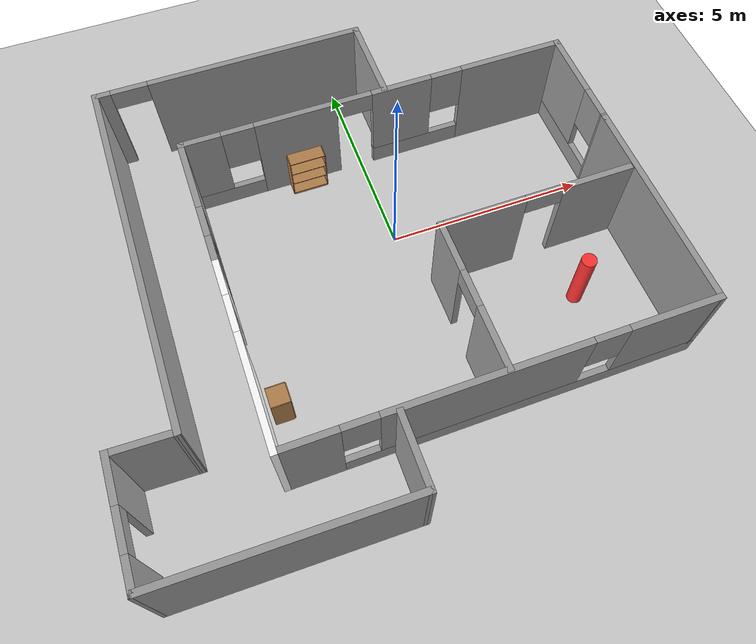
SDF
<sdf version="1.7">
 <world name="default">
  <plugin name="gazebo_ros_state" filename="libgazebo_ros_state.so">
   <ros><namespace>/gazebo</namespace></ros>
   <update_rate>20.0</update_rate>
  </plugin>
  <light name="sun" type="directional">
   <pose>0 0 10 0 -0 0</pose>
   <diffuse>0.8 0.8 0.8 1</diffuse>
   <specular>0.2 0.2 0.2 1</specular>
   <attenuation>
    <range>1000</range>
    <constant>0.9</constant>
    <linear>0.01</linear>
    <quadratic>0.001</quadratic>
   </attenuation>
   <direction>-0.5 0.1 -0.9</direction>
   <spot><inner_angle>0</inner_angle><outer_angle>0</outer_angle><falloff>0</falloff></spot>
  </light>
  <model name="ground_plane">
   <static>1</static>
   <link name="link">
    <collision name="collision">
     <geometry><plane><normal>0 0 1</normal><size>100 100</size></plane></geometry>
     <surface><friction><ode><mu>100</mu><mu2>50</mu2></ode></friction></surface>
    </collision>
    <visual name="visual">
     <cast_shadows>0</cast_shadows>
     <geometry><plane><normal>0 0 1</normal><size>100 100</size></plane></geometry>
     <material>
      <script><uri>file://media/materials/scripts/gazebo.material</uri><name>Gazebo/Grey</name></script>
     </material>
    </visual>
   </link>
  </model>
  <gravity>0 0 -9.8</gravity>
  <magnetic_field>6e-06 2.3e-05 -4.2e-05</magnetic_field>
  <atmosphere type="adiabatic"/>
  <physics type="ode">
   <max_step_size>0.001</max_step_size>
   <real_time_factor>1</real_time_factor>
   <real_time_update_rate>1000</real_time_update_rate>
  </physics>
  <scene><ambient>0.4 0.4 0.4 1</ambient><background>0.7 0.7 0.7 1</background><shadows>1</shadows></scene>
  <audio><device>default</device></audio>
  <spherical_coordinates>
   <surface_model>EARTH_WGS84</surface_model>
   <latitude_deg>0</latitude_deg>
   <longitude_deg>0</longitude_deg>
   <elevation>0</elevation>
   <heading_deg>0</heading_deg>
  </spherical_coordinates>
  <model name="Untitled">
   <pose>0.47 -1.23 0 0 -0 0</pose>
   <link name="Wall_0">
    <pose>-4.8 -1.675 0 0 -0 -1.5708</pose>
    <visual name="Wall_0_Visual_0">
     <pose>-1.80466 0 1.25 0 -0 0</pose>
     <geometry><box><size>0.890671 0.15 2.5</size></box></geometry>
     <material>
      <script><uri>file://media/materials/scripts/gazebo.material</uri><name>Gazebo/BrickWall</name></script>
      <ambient>1 1 1 1</ambient>
     </material>
     <meta><layer>0</layer></meta>
    </visual>
    <collision name="Wall_0_Collision_0">
     <geometry><box><size>0.890671 0.15 2.5</size></box></geometry>
     <pose>-1.80466 0 1.25 0 -0 0</pose>
    </collision>
    <visual name="Wall_0_Visual_1">
     <pose>0.895336 0 1.25 0 -0 0</pose>
     <geometry><box><size>2.70933 0.15 2.5</size></box></geometry>
     <material>
      <script><uri>file://media/materials/scripts/gazebo.material</uri><name>Gazebo/BrickWall</name></script>
      <ambient>1 1 1 1</ambient>
     </material>
     <meta><layer>0</layer></meta>
    </visual>
    <collision name="Wall_0_Collision_1">
     <geometry><box><size>2.70933 0.15 2.5</size></box></geometry>
     <pose>0.895336 0 1.25 0 -0 0</pose>
    </collision>
    <visual name="Wall_0_Visual_2">
     <pose>-0.909329 0 2.25 0 -0 0</pose>
     <geometry><box><size>0.9 0.15 0.5</size></box></geometry>
     <material>
      <script><uri>file://media/materials/scripts/gazebo.material</uri><name>Gazebo/BrickWall</name></script>
      <ambient>1 1 1 1</ambient>
     </material>
     <meta><layer>0</layer></meta>
    </visual>
    <collision name="Wall_0_Collision_2">
     <geometry><box><size>0.9 0.15 0.5</size></box></geometry>
     <pose>-0.909329 0 2.25 0 -0 0</pose>
    </collision>
   </link>
   <link name="Wall_1">
    <pose>-0 -3.85 0 0 -0 0</pose>
    <visual name="Wall_1_Visual_0">
     <pose>-4.18074 0 1.25 0 -0 0</pose>
     <geometry><box><size>1.38851 0.15 2.5</size></box></geometry>
     <material>
      <script><uri>file://media/materials/scripts/gazebo.material</uri><name>Gazebo/Grey</name></script>
      <ambient>1 1 1 1</ambient>
     </material>
     <meta><layer>0</layer></meta>
    </visual>
    <collision name="Wall_1_Collision_0">
     <geometry><box><size>1.38851 0.15 2.5</size></box></geometry>
     <pose>-4.18074 0 1.25 0 -0 0</pose>
    </collision>
    <visual name="Wall_1_Visual_1">
     <pose>0.694256 0 0.25 0 -0 0</pose>
     <geometry><box><size>8.36149 0.15 0.5</size></box></geometry>
     <material>
      <script><uri>file://media/materials/scripts/gazebo.material</uri><name>Gazebo/Grey</name></script>
      <ambient>1 1 1 1</ambient>
     </material>
     <meta><layer>0</layer></meta>
    </visual>
    <collision name="Wall_1_Collision_1">
     <geometry><box><size>8.36149 0.15 0.5</size></box></geometry>
     <pose>0.694256 0 0.25 0 -0 0</pose>
    </collision>
    <visual name="Wall_1_Visual_2">
     <pose>-0.394547 0 1.5 0 -0 0</pose>
     <geometry><box><size>4.58388 0.15 2</size></box></geometry>
     <material>
      <script><uri>file://media/materials/scripts/gazebo.material</uri><name>Gazebo/Grey</name></script>
      <ambient>1 1 1 1</ambient>
     </material>
     <meta><layer>0</layer></meta>
    </visual>
    <collision name="Wall_1_Collision_2">
     <geometry><box><size>4.58388 0.15 2</size></box></geometry>
     <pose>-0.394547 0 1.5 0 -0 0</pose>
    </collision>
    <visual name="Wall_1_Visual_3">
     <pose>3.7862 0 1.5 0 -0 0</pose>
     <geometry><box><size>2.17761 0.15 2</size></box></geometry>
     <material>
      <script><uri>file://media/materials/scripts/gazebo.material</uri><name>Gazebo/Grey</name></script>
      <ambient>1 1 1 1</ambient>
     </material>
     <meta><layer>0</layer></meta>
    </visual>
    <collision name="Wall_1_Collision_3">
     <geometry><box><size>2.17761 0.15 2</size></box></geometry>
     <pose>3.7862 0 1.5 0 -0 0</pose>
    </collision>
    <visual name="Wall_1_Visual_4">
     <pose>-3.08649 0 1.9 0 -0 0</pose>
     <geometry><box><size>0.8 0.15 1.2</size></box></geometry>
     <material>
      <script><uri>file://media/materials/scripts/gazebo.material</uri><name>Gazebo/Grey</name></script>
      <ambient>1 1 1 1</ambient>
     </material>
     <meta><layer>0</layer></meta>
    </visual>
    <collision name="Wall_1_Collision_4">
     <geometry><box><size>0.8 0.15 1.2</size></box></geometry>
     <pose>-3.08649 0 1.9 0 -0 0</pose>
    </collision>
    <visual name="Wall_1_Visual_5">
     <pose>2.29739 0 1.9 0 -0 0</pose>
     <geometry><box><size>0.8 0.15 1.2</size></box></geometry>
     <material>
      <script><uri>file://media/materials/scripts/gazebo.material</uri><name>Gazebo/Grey</name></script>
      <ambient>1 1 1 1</ambient>
     </material>
     <meta><layer>0</layer></meta>
    </visual>
    <collision name="Wall_1_Collision_5">
     <geometry><box><size>0.8 0.15 1.2</size></box></geometry>
     <pose>2.29739 0 1.9 0 -0 0</pose>
    </collision>
   </link>
   <link name="Wall_2">
    <collision name="Wall_2_Collision">
     <geometry><box><size>5.25 0.15 2.5</size></box></geometry>
     <pose>0 0 1.25 0 -0 0</pose>
    </collision>
    <visual name="Wall_2_Visual">
     <pose>0 0 1.25 0 -0 0</pose>
     <geometry><box><size>5.25 0.15 2.5</size></box></geometry>
     <material>
      <script><uri>file://media/materials/scripts/gazebo.material</uri><name>Gazebo/Grey</name></script>
      <ambient>1 1 1 1</ambient>
     </material>
     <meta><layer>0</layer></meta>
    </visual>
    <pose>4.8 -1.3 0 0 -0 1.5708</pose>
   </link>
   <link name="Wall_3">
    <pose>4.8 2.55 0 0 -0 1.5708</pose>
    <visual name="Wall_3_Visual_0">
     <pose>-1.27584 0 1.25 0 -0 0</pose>
     <geometry><box><size>0.198318 0.15 2.5</size></box></geometry>
     <material>
      <script><uri>file://media/materials/scripts/gazebo.material</uri><name>Gazebo/Grey</name></script>
      <ambient>1 1 1 1</ambient>
     </material>
     <meta><layer>0</layer></meta>
    </visual>
    <collision name="Wall_3_Collision_0">
     <geometry><box><size>0.198318 0.15 2.5</size></box></geometry>
     <pose>-1.27584 0 1.25 0 -0 0</pose>
    </collision>
    <visual name="Wall_3_Visual_1">
     <pose>0.099159 0 0.25 0 -0 0</pose>
     <geometry><box><size>2.55168 0.15 0.5</size></box></geometry>
     <material>
      <script><uri>file://media/materials/scripts/gazebo.material</uri><name>Gazebo/Grey</name></script>
      <ambient>1 1 1 1</ambient>
     </material>
     <meta><layer>0</layer></meta>
    </visual>
    <collision name="Wall_3_Collision_1">
     <geometry><box><size>2.55168 0.15 0.5</size></box></geometry>
     <pose>0.099159 0 0.25 0 -0 0</pose>
    </collision>
    <visual name="Wall_3_Visual_2">
     <pose>0.499159 0 1.5 0 -0 0</pose>
     <geometry><box><size>1.75168 0.15 2</size></box></geometry>
     <material>
      <script><uri>file://media/materials/scripts/gazebo.material</uri><name>Gazebo/Grey</name></script>
      <ambient>1 1 1 1</ambient>
     </material>
     <meta><layer>0</layer></meta>
    </visual>
    <collision name="Wall_3_Collision_2">
     <geometry><box><size>1.75168 0.15 2</size></box></geometry>
     <pose>0.499159 0 1.5 0 -0 0</pose>
    </collision>
    <visual name="Wall_3_Visual_3">
     <pose>-0.776682 0 1.9 0 -0 0</pose>
     <geometry><box><size>0.8 0.15 1.2</size></box></geometry>
     <material>
      <script><uri>file://media/materials/scripts/gazebo.material</uri><name>Gazebo/Grey</name></script>
      <ambient>1 1 1 1</ambient>
     </material>
     <meta><layer>0</layer></meta>
    </visual>
    <collision name="Wall_3_Collision_3">
     <geometry><box><size>0.8 0.15 1.2</size></box></geometry>
     <pose>-0.776682 0 1.9 0 -0 0</pose>
    </collision>
   </link>
   <link name="Wall_4">
    <pose>-0 3.85 0 0 -0 3.14159</pose>
    <visual name="Wall_4_Visual_0">
     <pose>-3.54148 0 1.25 0 -0 0</pose>
     <geometry><box><size>2.66705 0.15 2.5</size></box></geometry>
     <material>
      <script><uri>file://media/materials/scripts/gazebo.material</uri><name>Gazebo/Grey</name></script>
      <ambient>1 1 1 1</ambient>
     </material>
     <meta><layer>0</layer></meta>
    </visual>
    <collision name="Wall_4_Collision_0">
     <geometry><box><size>2.66705 0.15 2.5</size></box></geometry>
     <pose>-3.54148 0 1.25 0 -0 0</pose>
    </collision>
    <visual name="Wall_4_Visual_1">
     <pose>2.03972 0 1.25 0 -0 0</pose>
     <geometry><box><size>2.02327 0.15 2.5</size></box></geometry>
     <material>
      <script><uri>file://media/materials/scripts/gazebo.material</uri><name>Gazebo/Grey</name></script>
      <ambient>1 1 1 1</ambient>
     </material>
     <meta><layer>0</layer></meta>
    </visual>
    <collision name="Wall_4_Collision_1">
     <geometry><box><size>2.02327 0.15 2.5</size></box></geometry>
     <pose>2.03972 0 1.25 0 -0 0</pose>
    </collision>
    <visual name="Wall_4_Visual_2">
     <pose>-1.03993 0 0.25 0 -0 0</pose>
     <geometry><box><size>2.33604 0.15 0.5</size></box></geometry>
     <material>
      <script><uri>file://media/materials/scripts/gazebo.material</uri><name>Gazebo/Grey</name></script>
      <ambient>1 1 1 1</ambient>
     </material>
     <meta><layer>0</layer></meta>
    </visual>
    <collision name="Wall_4_Collision_2">
     <geometry><box><size>2.33604 0.15 0.5</size></box></geometry>
     <pose>-1.03993 0 0.25 0 -0 0</pose>
    </collision>
    <visual name="Wall_4_Visual_3">
     <pose>3.96318 0 0.25 0 -0 0</pose>
     <geometry><box><size>1.82364 0.15 0.5</size></box></geometry>
     <material>
      <script><uri>file://media/materials/scripts/gazebo.material</uri><name>Gazebo/Grey</name></script>
      <ambient>1 1 1 1</ambient>
     </material>
     <meta><layer>0</layer></meta>
    </visual>
    <collision name="Wall_4_Collision_3">
     <geometry><box><size>1.82364 0.15 0.5</size></box></geometry>
     <pose>3.96318 0 0.25 0 -0 0</pose>
    </collision>
    <visual name="Wall_4_Visual_4">
     <pose>-0.63993 0 1.5 0 -0 0</pose>
     <geometry><box><size>1.53604 0.15 2</size></box></geometry>
     <material>
      <script><uri>file://media/materials/scripts/gazebo.material</uri><name>Gazebo/Grey</name></script>
      <ambient>1 1 1 1</ambient>
     </material>
     <meta><layer>0</layer></meta>
    </visual>
    <collision name="Wall_4_Collision_4">
     <geometry><box><size>1.53604 0.15 2</size></box></geometry>
     <pose>-0.63993 0 1.5 0 -0 0</pose>
    </collision>
    <visual name="Wall_4_Visual_5">
     <pose>-0.63993 0 1.5 0 -0 0</pose>
     <geometry><box><size>1.53604 0.15 2</size></box></geometry>
     <material>
      <script><uri>file://media/materials/scripts/gazebo.material</uri><name>Gazebo/Grey</name></script>
      <ambient>1 1 1 1</ambient>
     </material>
     <meta><layer>0</layer></meta>
    </visual>
    <collision name="Wall_4_Collision_5">
     <geometry><box><size>1.53604 0.15 2</size></box></geometry>
     <pose>-0.63993 0 1.5 0 -0 0</pose>
    </collision>
    <visual name="Wall_4_Visual_6">
     <pose>4.36318 0 1.5 0 -0 0</pose>
     <geometry><box><size>1.02364 0.15 2</size></box></geometry>
     <material>
      <script><uri>file://media/materials/scripts/gazebo.material</uri><name>Gazebo/Grey</name></script>
      <ambient>1 1 1 1</ambient>
     </material>
     <meta><layer>0</layer></meta>
    </visual>
    <collision name="Wall_4_Collision_6">
     <geometry><box><size>1.02364 0.15 2</size></box></geometry>
     <pose>4.36318 0 1.5 0 -0 0</pose>
    </collision>
    <visual name="Wall_4_Visual_7">
     <pose>-1.80795 0 1.9 0 -0 0</pose>
     <geometry><box><size>0.8 0.15 1.2</size></box></geometry>
     <material>
      <script><uri>file://media/materials/scripts/gazebo.material</uri><name>Gazebo/Grey</name></script>
      <ambient>1 1 1 1</ambient>
     </material>
     <meta><layer>0</layer></meta>
    </visual>
    <collision name="Wall_4_Collision_7">
     <geometry><box><size>0.8 0.15 1.2</size></box></geometry>
     <pose>-1.80795 0 1.9 0 -0 0</pose>
    </collision>
    <visual name="Wall_4_Visual_8">
     <pose>3.45136 0 1.9 0 -0 0</pose>
     <geometry><box><size>0.8 0.15 1.2</size></box></geometry>
     <material>
      <script><uri>file://media/materials/scripts/gazebo.material</uri><name>Gazebo/Grey</name></script>
      <ambient>1 1 1 1</ambient>
     </material>
     <meta><layer>0</layer></meta>
    </visual>
    <collision name="Wall_4_Collision_8">
     <geometry><box><size>0.8 0.15 1.2</size></box></geometry>
     <pose>3.45136 0 1.9 0 -0 0</pose>
    </collision>
    <visual name="Wall_4_Visual_9">
     <pose>0.578089 0 2.25 0 -0 0</pose>
     <geometry><box><size>0.9 0.15 0.5</size></box></geometry>
     <material>
      <script><uri>file://media/materials/scripts/gazebo.material</uri><name>Gazebo/Grey</name></script>
      <ambient>1 1 1 1</ambient>
     </material>
     <meta><layer>0</layer></meta>
    </visual>
    <collision name="Wall_4_Collision_9">
     <geometry><box><size>0.9 0.15 0.5</size></box></geometry>
     <pose>0.578089 0 2.25 0 -0 0</pose>
    </collision>
    <visual name="Wall_4_Visual_10">
     <pose>0.578089 0 2.25 0 -0 0</pose>
     <geometry><box><size>0.9 0.15 0.5</size></box></geometry>
     <material>
      <script><uri>file://media/materials/scripts/gazebo.material</uri><name>Gazebo/Grey</name></script>
      <ambient>1 1 1 1</ambient>
     </material>
     <meta><layer>0</layer></meta>
    </visual>
    <collision name="Wall_4_Collision_10">
     <geometry><box><size>0.9 0.15 0.5</size></box></geometry>
     <pose>0.578089 0 2.25 0 -0 0</pose>
    </collision>
   </link>
   <link name="Wall_5">
    <pose>-4.8 2.175 0 0 -0 -1.5708</pose>
    <visual name="Wall_5_Visual_0">
     <pose>-0.797683 0 1.25 0 -0 0</pose>
     <geometry><box><size>1.90463 0.15 2.5</size></box></geometry>
     <material>
      <script><uri>file://media/materials/scripts/gazebo.material</uri><name>Gazebo/Grey</name></script>
      <ambient>1 1 1 1</ambient>
     </material>
     <meta><layer>0</layer></meta>
    </visual>
    <collision name="Wall_5_Collision_0">
     <geometry><box><size>1.90463 0.15 2.5</size></box></geometry>
     <pose>-0.797683 0 1.25 0 -0 0</pose>
    </collision>
    <visual name="Wall_5_Visual_1">
     <pose>0.952317 0 0.25 0 -0 0</pose>
     <geometry><box><size>1.59537 0.15 0.5</size></box></geometry>
     <material>
      <script><uri>file://media/materials/scripts/gazebo.material</uri><name>Gazebo/Grey</name></script>
      <ambient>1 1 1 1</ambient>
     </material>
     <meta><layer>0</layer></meta>
    </visual>
    <collision name="Wall_5_Collision_1">
     <geometry><box><size>1.59537 0.15 0.5</size></box></geometry>
     <pose>0.952317 0 0.25 0 -0 0</pose>
    </collision>
    <visual name="Wall_5_Visual_2">
     <pose>1.35232 0 1.5 0 -0 0</pose>
     <geometry><box><size>0.795367 0.15 2</size></box></geometry>
     <material>
      <script><uri>file://media/materials/scripts/gazebo.material</uri><name>Gazebo/Grey</name></script>
      <ambient>1 1 1 1</ambient>
     </material>
     <meta><layer>0</layer></meta>
    </visual>
    <collision name="Wall_5_Collision_2">
     <geometry><box><size>0.795367 0.15 2</size></box></geometry>
     <pose>1.35232 0 1.5 0 -0 0</pose>
    </collision>
    <visual name="Wall_5_Visual_3">
     <pose>0.554633 0 1.9 0 -0 0</pose>
     <geometry><box><size>0.8 0.15 1.2</size></box></geometry>
     <material>
      <script><uri>file://media/materials/scripts/gazebo.material</uri><name>Gazebo/Grey</name></script>
      <ambient>1 1 1 1</ambient>
     </material>
     <meta><layer>0</layer></meta>
    </visual>
    <collision name="Wall_5_Collision_3">
     <geometry><box><size>0.8 0.15 1.2</size></box></geometry>
     <pose>0.554633 0 1.9 0 -0 0</pose>
    </collision>
   </link>
   <link name="Wall_7">
    <pose>0.033716 -2.02469 0 0 -0 1.5708</pose>
    <visual name="Wall_7_Visual_0">
     <pose>-1.09891 0 1.25 0 -0 0</pose>
     <geometry><box><size>1.55218 0.15 2.5</size></box></geometry>
     <material>
      <script><uri>file://media/materials/scripts/gazebo.material</uri><name>Gazebo/Grey</name></script>
      <ambient>1 1 1 1</ambient>
     </material>
     <meta><layer>0</layer></meta>
    </visual>
    <collision name="Wall_7_Collision_0">
     <geometry><box><size>1.55218 0.15 2.5</size></box></geometry>
     <pose>-1.09891 0 1.25 0 -0 0</pose>
    </collision>
    <visual name="Wall_7_Visual_1">
     <pose>1.22609 0 1.25 0 -0 0</pose>
     <geometry><box><size>1.29782 0.15 2.5</size></box></geometry>
     <material>
      <script><uri>file://media/materials/scripts/gazebo.material</uri><name>Gazebo/Grey</name></script>
      <ambient>1 1 1 1</ambient>
     </material>
     <meta><layer>0</layer></meta>
    </visual>
    <collision name="Wall_7_Collision_1">
     <geometry><box><size>1.29782 0.15 2.5</size></box></geometry>
     <pose>1.22609 0 1.25 0 -0 0</pose>
    </collision>
    <visual name="Wall_7_Visual_2">
     <pose>0.127184 0 2.25 0 -0 0</pose>
     <geometry><box><size>0.9 0.15 0.5</size></box></geometry>
     <material>
      <script><uri>file://media/materials/scripts/gazebo.material</uri><name>Gazebo/Grey</name></script>
      <ambient>1 1 1 1</ambient>
     </material>
     <meta><layer>0</layer></meta>
    </visual>
    <collision name="Wall_7_Collision_2">
     <geometry><box><size>0.9 0.15 0.5</size></box></geometry>
     <pose>0.127184 0 2.25 0 -0 0</pose>
    </collision>
   </link>
   <link name="Wall_8">
    <pose>2.33372 -0.224694 0 0 -0 0</pose>
    <visual name="Wall_8_Visual_0">
     <pose>-1.3236 0 1.25 0 -0 0</pose>
     <geometry><box><size>2.10281 0.15 2.5</size></box></geometry>
     <material>
      <script><uri>file://media/materials/scripts/gazebo.material</uri><name>Gazebo/Grey</name></script>
      <ambient>1 1 1 1</ambient>
     </material>
     <meta><layer>0</layer></meta>
    </visual>
    <collision name="Wall_8_Collision_0">
     <geometry><box><size>2.10281 0.15 2.5</size></box></geometry>
     <pose>-1.3236 0 1.25 0 -0 0</pose>
    </collision>
    <visual name="Wall_8_Visual_1">
     <pose>1.5014 0 1.25 0 -0 0</pose>
     <geometry><box><size>1.74719 0.15 2.5</size></box></geometry>
     <material>
      <script><uri>file://media/materials/scripts/gazebo.material</uri><name>Gazebo/Grey</name></script>
      <ambient>1 1 1 1</ambient>
     </material>
     <meta><layer>0</layer></meta>
    </visual>
    <collision name="Wall_8_Collision_1">
     <geometry><box><size>1.74719 0.15 2.5</size></box></geometry>
     <pose>1.5014 0 1.25 0 -0 0</pose>
    </collision>
    <visual name="Wall_8_Visual_2">
     <pose>0.177809 0 2.25 0 -0 0</pose>
     <geometry><box><size>0.9 0.15 0.5</size></box></geometry>
     <material>
      <script><uri>file://media/materials/scripts/gazebo.material</uri><name>Gazebo/Grey</name></script>
      <ambient>1 1 1 1</ambient>
     </material>
     <meta><layer>0</layer></meta>
    </visual>
    <collision name="Wall_8_Collision_2">
     <geometry><box><size>0.9 0.15 0.5</size></box></geometry>
     <pose>0.177809 0 2.25 0 -0 0</pose>
    </collision>
   </link>
   <static>1</static>
  </model>
  <model name="bookshelf">
   <static>1</static>
   <link name="link">
    <inertial><mass>1</mass></inertial>
    <collision name="back">
     <pose>0 0.005 0.6 0 -0 0</pose>
     <geometry><box><size>0.9 0.01 1.2</size></box></geometry>
    </collision>
    <visual name="visual1">
     <pose>0 0.005 0.6 0 -0 0</pose>
     <geometry><box><size>0.9 0.01 1.2</size></box></geometry>
     <material>
      <script><uri>file://media/materials/scripts/gazebo.material</uri><name>Gazebo/Wood</name></script>
     </material>
    </visual>
    <collision name="left_side">
     <pose>0.45 -0.195 0.6 0 -0 0</pose>
     <geometry><box><size>0.02 0.4 1.2</size></box></geometry>
    </collision>
    <visual name="visual2">
     <pose>0.45 -0.195 0.6 0 -0 0</pose>
     <geometry><box><size>0.02 0.4 1.2</size></box></geometry>
     <material>
      <script><uri>file://media/materials/scripts/gazebo.material</uri><name>Gazebo/Wood</name></script>
     </material>
    </visual>
    <collision name="right_side">
     <pose>-0.45 -0.195 0.6 0 -0 0</pose>
     <geometry><box><size>0.02 0.4 1.2</size></box></geometry>
    </collision>
    <visual name="visual3">
     <pose>-0.45 -0.195 0.6 0 -0 0</pose>
     <geometry><box><size>0.02 0.4 1.2</size></box></geometry>
     <material>
      <script><uri>file://media/materials/scripts/gazebo.material</uri><name>Gazebo/Wood</name></script>
     </material>
    </visual>
    <collision name="bottom">
     <pose>0 -0.195 0.03 0 -0 0</pose>
     <geometry><box><size>0.88 0.4 0.06</size></box></geometry>
    </collision>
    <visual name="visual4">
     <pose>0 -0.195 0.03 0 -0 0</pose>
     <geometry><box><size>0.88 0.4 0.06</size></box></geometry>
     <material>
      <script><uri>file://media/materials/scripts/gazebo.material</uri><name>Gazebo/Wood</name></script>
     </material>
    </visual>
    <collision name="top">
     <pose>0 -0.195 1.19 0 -0 0</pose>
     <geometry><box><size>0.88 0.4 0.02</size></box></geometry>
    </collision>
    <visual name="visual5">
     <pose>0 -0.195 1.19 0 -0 0</pose>
     <geometry><box><size>0.88 0.4 0.02</size></box></geometry>
     <material>
      <script><uri>file://media/materials/scripts/gazebo.material</uri><name>Gazebo/Wood</name></script>
     </material>
    </visual>
    <collision name="low_shelf">
     <pose>0 -0.195 0.43 0 -0 0</pose>
     <geometry><box><size>0.88 0.4 0.02</size></box></geometry>
    </collision>
    <visual name="visual6">
     <pose>0 -0.195 0.43 0 -0 0</pose>
     <geometry><box><size>0.88 0.4 0.02</size></box></geometry>
     <material>
      <script><uri>file://media/materials/scripts/gazebo.material</uri><name>Gazebo/Wood</name></script>
     </material>
    </visual>
    <collision name="high_shelf">
     <pose>0 -0.195 0.8 0 -0 0</pose>
     <geometry><box><size>0.88 0.4 0.02</size></box></geometry>
    </collision>
    <visual name="visual7">
     <pose>0 -0.195 0.8 0 -0 0</pose>
     <geometry><box><size>0.88 0.4 0.02</size></box></geometry>
     <material>
      <script><uri>file://media/materials/scripts/gazebo.material</uri><name>Gazebo/Wood</name></script>
     </material>
    </visual>
   </link>
   <pose>-1.49781 2.59869 0 0 -0 0</pose>
  </model>
  <model name="cabinet">
   <static>1</static>
   <link name="cabinet_bottom_plate">
    <inertial>
     <pose>0 0 -1 0 -0 0</pose>
     <inertia><ixx>2.05</ixx><ixy>0</ixy><ixz>0</ixz><iyy>2.05</iyy><iyz>0</iyz><izz>2.05</izz></inertia>
     <mass>25</mass>
    </inertial>
    <collision name="cabinet_bottom_plate_geom">
     <pose>0 0 0.01 0 -0 0</pose>
     <geometry><box><size>0.45 0.45 0.02</size></box></geometry>
    </collision>
    <visual name="cabinet_bottom_plate_geom_visual">
     <pose>0 0 0.01 0 -0 0</pose>
     <geometry><box><size>0.45 0.45 0.02</size></box></geometry>
     <material>
      <script><uri>file://media/materials/scripts/gazebo.material</uri><name>Gazebo/Wood</name></script>
     </material>
    </visual>
    <collision name="cabinet_bottom_plate_geom_cabinet_back_plate">
     <pose>0.235 0 0.51 0 -0 0</pose>
     <geometry><box><size>0.02 0.45 1.02</size></box></geometry>
    </collision>
    <visual name="cabinet_bottom_plate_geom_cabinet_back_plate_visual">
     <pose>0.235 0 0.51 0 -0 0</pose>
     <geometry><box><size>0.02 0.45 1.02</size></box></geometry>
     <material>
      <script><uri>file://media/materials/scripts/gazebo.material</uri><name>Gazebo/Wood</name></script>
     </material>
    </visual>
    <collision name="cabinet_bottom_plate_geom_cabinet_left_plate">
     <pose>0 0.235 0.51 0 -0 0</pose>
     <geometry><box><size>0.45 0.02 1.02</size></box></geometry>
    </collision>
    <visual name="cabinet_bottom_plate_geom_cabinet_left_plate_visual">
     <pose>0 0.235 0.51 0 -0 0</pose>
     <geometry><box><size>0.45 0.02 1.02</size></box></geometry>
     <material>
      <script><uri>file://media/materials/scripts/gazebo.material</uri><name>Gazebo/Wood</name></script>
     </material>
    </visual>
    <collision name="cabinet_bottom_plate_geom_cabinet_middle_plate">
     <pose>0 0 0.51 0 -0 0</pose>
     <geometry><box><size>0.45 0.45 0.02</size></box></geometry>
    </collision>
    <visual name="cabinet_bottom_plate_geom_cabinet_middle_plate_visual">
     <pose>0 0 0.51 0 -0 0</pose>
     <geometry><box><size>0.45 0.45 0.02</size></box></geometry>
     <material>
      <script><uri>file://media/materials/scripts/gazebo.material</uri><name>Gazebo/Wood</name></script>
     </material>
    </visual>
    <collision name="cabinet_bottom_plate_geom_cabinet_right_plate">
     <pose>0 -0.235 0.51 0 -0 0</pose>
     <geometry><box><size>0.45 0.02 1.02</size></box></geometry>
    </collision>
    <visual name="cabinet_bottom_plate_geom_cabinet_right_plate_visual">
     <pose>0 -0.235 0.51 0 -0 0</pose>
     <geometry><box><size>0.45 0.02 1.02</size></box></geometry>
     <material>
      <script><uri>file://media/materials/scripts/gazebo.material</uri><name>Gazebo/Wood</name></script>
     </material>
    </visual>
    <collision name="cabinet_bottom_plate_geom_cabinet_top_plate">
     <pose>0 0 1.01 0 -0 0</pose>
     <geometry><box><size>0.45 0.45 0.02</size></box></geometry>
    </collision>
    <visual name="cabinet_bottom_plate_geom_cabinet_top_plate_visual">
     <pose>0 0 1.01 0 -0 0</pose>
     <geometry><box><size>0.45 0.45 0.02</size></box></geometry>
     <material>
      <script><uri>file://media/materials/scripts/gazebo.material</uri><name>Gazebo/Wood</name></script>
     </material>
    </visual>
   </link>
   <pose>-3.93534 -3.42051 0 0 -0 0</pose>
  </model>
  <model name="custom-flat.world">
   <pose>-3.30064 -0.99572 0 0 -0 0</pose>
   <link name="Wall_10">
    <collision name="Wall_10_Collision">
     <geometry><box><size>9 0.15 2.5</size></box></geometry>
     <pose>0 0 1.25 0 -0 0</pose>
    </collision>
    <visual name="Wall_10_Visual">
     <pose>0 0 1.25 0 -0 0</pose>
     <geometry><box><size>9 0.15 2.5</size></box></geometry>
     <material>
      <script><uri>file://media/materials/scripts/gazebo.material</uri><name>Gazebo/Grey</name></script>
      <ambient>1 1 1 1</ambient>
     </material>
     <meta><layer>0</layer></meta>
    </visual>
    <pose>-2.61833 1.3326 0 0 -0 1.5708</pose>
   </link>
   <link name="Wall_12">
    <pose>0.681675 5.7576 0 0 -0 0</pose>
    <visual name="Wall_12_Visual_0">
     <pose>-3.15462 0 1.25 0 -0 0</pose>
     <geometry><box><size>0.440753 0.15 2.5</size></box></geometry>
     <material>
      <script><uri>file://media/materials/scripts/gazebo.material</uri><name>Gazebo/Grey</name></script>
      <ambient>1 1 1 1</ambient>
     </material>
     <meta><layer>0</layer></meta>
    </visual>
    <collision name="Wall_12_Collision_0">
     <geometry><box><size>0.440753 0.15 2.5</size></box></geometry>
     <pose>-3.15462 0 1.25 0 -0 0</pose>
    </collision>
    <visual name="Wall_12_Visual_1">
     <pose>0.670377 0 1.25 0 -0 0</pose>
     <geometry><box><size>5.40925 0.15 2.5</size></box></geometry>
     <material>
      <script><uri>file://media/materials/scripts/gazebo.material</uri><name>Gazebo/Grey</name></script>
      <ambient>1 1 1 1</ambient>
     </material>
     <meta><layer>0</layer></meta>
    </visual>
    <collision name="Wall_12_Collision_1">
     <geometry><box><size>5.40925 0.15 2.5</size></box></geometry>
     <pose>0.670377 0 1.25 0 -0 0</pose>
    </collision>
    <visual name="Wall_12_Visual_2">
     <pose>-2.48425 0 2.25 0 -0 0</pose>
     <geometry><box><size>0.9 0.15 0.5</size></box></geometry>
     <material>
      <script><uri>file://media/materials/scripts/gazebo.material</uri><name>Gazebo/Grey</name></script>
      <ambient>1 1 1 1</ambient>
     </material>
     <meta><layer>0</layer></meta>
    </visual>
    <collision name="Wall_12_Collision_2">
     <geometry><box><size>0.9 0.15 0.5</size></box></geometry>
     <pose>-2.48425 0 2.25 0 -0 0</pose>
    </collision>
   </link>
   <link name="Wall_13">
    <collision name="Wall_13_Collision">
     <geometry><box><size>2.25 0.15 2.5</size></box></geometry>
     <pose>0 0 1.25 0 -0 0</pose>
    </collision>
    <visual name="Wall_13_Visual">
     <pose>0 0 1.25 0 -0 0</pose>
     <geometry><box><size>2.25 0.15 2.5</size></box></geometry>
     <material>
      <script><uri>file://media/materials/scripts/gazebo.material</uri><name>Gazebo/Grey</name></script>
      <ambient>1 1 1 1</ambient>
     </material>
     <meta><layer>0</layer></meta>
    </visual>
    <pose>3.98168 4.7076 0 0 -0 -1.5708</pose>
   </link>
   <link name="Wall_3">
    <collision name="Wall_3_Collision">
     <geometry><box><size>5.60914 0.15 2.5</size></box></geometry>
     <pose>0 0 1.25 0 -0 0</pose>
    </collision>
    <visual name="Wall_3_Visual">
     <pose>0 0 1.25 0 -0 0</pose>
     <geometry><box><size>5.60914 0.15 2.5</size></box></geometry>
     <material>
      <script><uri>file://media/materials/scripts/gazebo.material</uri><name>Gazebo/Grey</name></script>
      <ambient>1 1 1 1</ambient>
     </material>
     <meta><layer>0</layer></meta>
    </visual>
    <pose>-1.25029 -5.70311 0 0 -0 -0.019433</pose>
   </link>
   <link name="Wall_5">
    <collision name="Wall_5_Collision">
     <geometry><box><size>1.75 0.15 2.5</size></box></geometry>
     <pose>0 0 1.25 0 -0 0</pose>
    </collision>
    <visual name="Wall_5_Visual">
     <pose>0 0 1.25 0 -0 0</pose>
     <geometry><box><size>1.75 0.15 2.5</size></box></geometry>
     <material>
      <script><uri>file://media/materials/scripts/gazebo.material</uri><name>Gazebo/Grey</name></script>
      <ambient>1 1 1 1</ambient>
     </material>
     <meta><layer>0</layer></meta>
    </visual>
    <pose>1.47877 -4.95615 0 0 -0 1.5708</pose>
   </link>
   <link name="Wall_7">
    <pose>-3.97934 -4.35007 0 0 -0 1.5708</pose>
    <visual name="Wall_7_Visual_0">
     <pose>-0.995061 0 1.25 0 -0 0</pose>
     <geometry><box><size>0.759877 0.15 2.5</size></box></geometry>
     <material>
      <script><uri>file://media/materials/scripts/gazebo.material</uri><name>Gazebo/Grey</name></script>
      <ambient>1 1 1 1</ambient>
     </material>
     <meta><layer>0</layer></meta>
    </visual>
    <collision name="Wall_7_Collision_0">
     <geometry><box><size>0.759877 0.15 2.5</size></box></geometry>
     <pose>-0.995061 0 1.25 0 -0 0</pose>
    </collision>
    <visual name="Wall_7_Visual_1">
     <pose>0.829939 0 1.25 0 -0 0</pose>
     <geometry><box><size>1.09012 0.15 2.5</size></box></geometry>
     <material>
      <script><uri>file://media/materials/scripts/gazebo.material</uri><name>Gazebo/Grey</name></script>
      <ambient>1 1 1 1</ambient>
     </material>
     <meta><layer>0</layer></meta>
    </visual>
    <collision name="Wall_7_Collision_1">
     <geometry><box><size>1.09012 0.15 2.5</size></box></geometry>
     <pose>0.829939 0 1.25 0 -0 0</pose>
    </collision>
    <visual name="Wall_7_Visual_2">
     <pose>-0.165123 0 2.25 0 -0 0</pose>
     <geometry><box><size>0.9 0.15 0.5</size></box></geometry>
     <material>
      <script><uri>file://media/materials/scripts/gazebo.material</uri><name>Gazebo/Grey</name></script>
      <ambient>1 1 1 1</ambient>
     </material>
     <meta><layer>0</layer></meta>
    </visual>
    <collision name="Wall_7_Collision_2">
     <geometry><box><size>0.9 0.15 0.5</size></box></geometry>
     <pose>-0.165123 0 2.25 0 -0 0</pose>
    </collision>
   </link>
   <link name="Wall_9">
    <collision name="Wall_9_Collision">
     <geometry><box><size>1.48855 0.15 2.5</size></box></geometry>
     <pose>0 0 1.25 0 -0 0</pose>
    </collision>
    <visual name="Wall_9_Visual">
     <pose>0 0 1.25 0 -0 0</pose>
     <geometry><box><size>1.48855 0.15 2.5</size></box></geometry>
     <material>
      <script><uri>file://media/materials/scripts/gazebo.material</uri><name>Gazebo/Grey</name></script>
      <ambient>1 1 1 1</ambient>
     </material>
     <meta><layer>0</layer></meta>
    </visual>
    <pose>-3.3104 -3.07124 0 0 -0 -0.03163</pose>
   </link>
   <static>1</static>
  </model>
  <model name="human_0">
   <static>true</static>
   <pose>3.5 -3.0 0.0 0 0 0</pose>
   <link name="link">
    <collision name="collision">
     <geometry><cylinder><radius>0.18</radius><length>1.7</length></cylinder></geometry>
     <pose>0 0 0.85 0 0 0</pose>
    </collision>
    <visual name="visual">
     <geometry><cylinder><radius>0.18</radius><length>1.7</length></cylinder></geometry>
     <pose>0 0 0.85 0 0 0</pose>
     <material>
      <ambient>1.0 0.0 0.0 1.0</ambient>
      <diffuse>1.0 0.2 0.2 1.0</diffuse>
      <specular>0.5 0.5 0.5 1.0</specular>
      <emissive>0.0 0.0 0.0 1.0</emissive>
     </material>
    </visual>
   </link>
  </model>
 </world>
</sdf>
